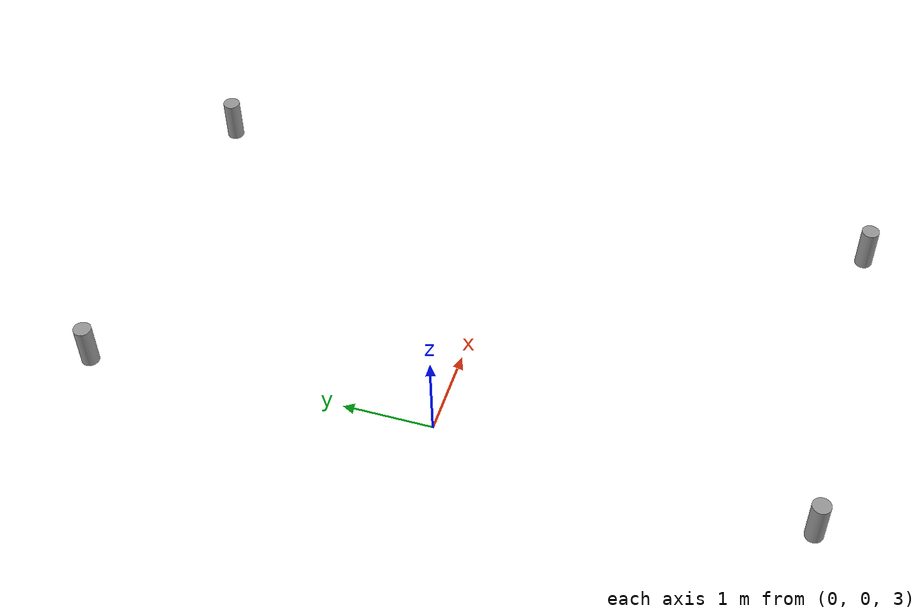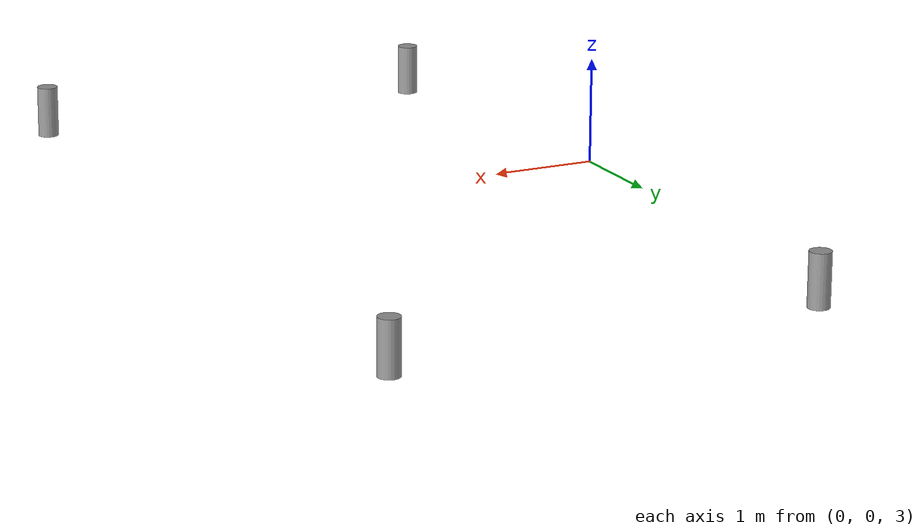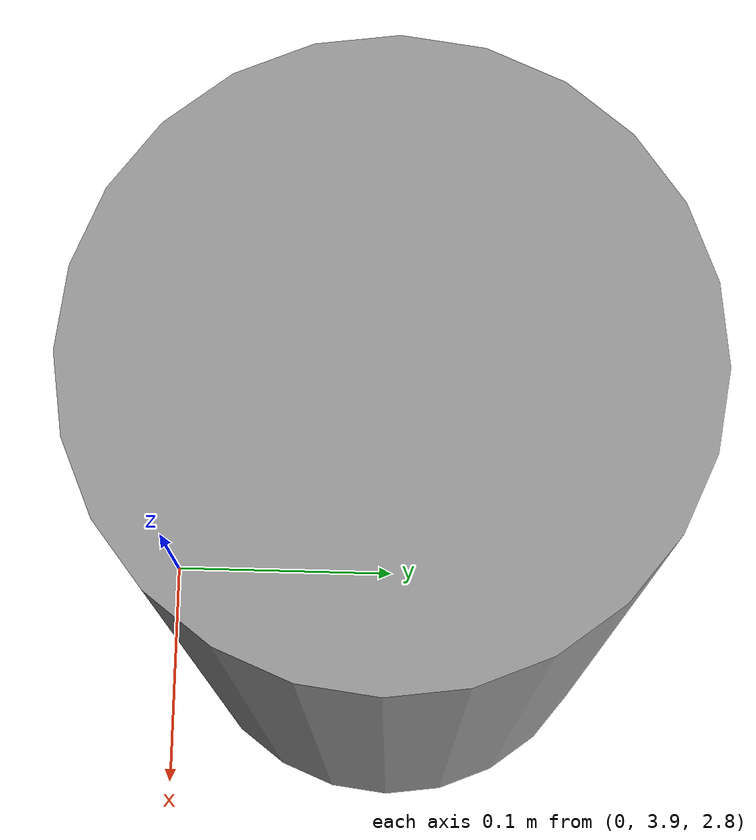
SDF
<sdf version="1.4">
 <world name="default">
  <scene><ambient>0.5 0.5 0.5 1</ambient><background>0.5 0.5 0.5 1</background><shadows>false</shadows></scene>
  <physics type="ode">
   <gravity>0 0 -20</gravity>
   <ode>
    <solver><type>quick</type><iters>10</iters><sor>1.3</sor></solver>
    <constraints>
     <cfm>0.0</cfm>
     <erp>0.2</erp>
     <contact_max_correcting_vel>10</contact_max_correcting_vel>
     <contact_surface_layer>0.001</contact_surface_layer>
    </constraints>
   </ode>
   <max_step_size>0.001</max_step_size>
  </physics>
  <light type="directional" name="directional_light_1">
   <pose>0 20 20 0.1 0.1 0</pose>
   <diffuse>1 1 1 1</diffuse>
   <specular>1 1 1 1</specular>
   <attenuation><range>300</range></attenuation>
   <direction>0.1 0.1 -1</direction>
   <cast_shadows>false</cast_shadows>
  </light>
  <model name="uwb_anchor0">
   <static>1</static>
   <link name="link">
    <pose>0 -4 3.0 0 -0 0</pose>
    <velocity>0 0 0 0 -0 0</velocity>
    <acceleration>0 0 0 0 -0 0</acceleration>
    <wrench>0 0 0 0 -0 0</wrench>
    <inertial>
     <mass>1</mass>
     <inertia><ixx>0.145833</ixx><ixy>0</ixy><ixz>0</ixz><iyy>0.145833</iyy><iyz>0</iyz><izz>0.125</izz></inertia>
    </inertial>
    <visual name="visual">
     <geometry><cylinder><radius>0.1</radius><length>0.5</length></cylinder></geometry>
     <material>
      <script><name>Gazebo/Grey</name><uri>file://media/materials/scripts/gazebo.material</uri></script>
     </material>
    </visual>
   </link>
  </model>
  <model name="uwb_anchor1">
   <static>1</static>
   <link name="link">
    <pose>0 4 3.0 0 -0 0</pose>
    <velocity>0 0 0 0 -0 0</velocity>
    <acceleration>0 0 0 0 -0 0</acceleration>
    <wrench>0 0 0 0 -0 0</wrench>
    <inertial>
     <mass>1</mass>
     <inertia><ixx>0.145833</ixx><ixy>0</ixy><ixz>0</ixz><iyy>0.145833</iyy><iyz>0</iyz><izz>0.125</izz></inertia>
    </inertial>
    <visual name="visual">
     <geometry><cylinder><radius>0.1</radius><length>0.5</length></cylinder></geometry>
     <material>
      <script><name>Gazebo/Grey</name><uri>file://media/materials/scripts/gazebo.material</uri></script>
     </material>
    </visual>
   </link>
  </model>
  <model name="uwb_anchor2">
   <static>1</static>
   <link name="link">
    <pose>4 4 3.0 0 -0 0</pose>
    <velocity>0 0 0 0 -0 0</velocity>
    <acceleration>0 0 0 0 -0 0</acceleration>
    <wrench>0 0 0 0 -0 0</wrench>
    <inertial>
     <mass>1</mass>
     <inertia><ixx>0.145833</ixx><ixy>0</ixy><ixz>0</ixz><iyy>0.145833</iyy><iyz>0</iyz><izz>0.125</izz></inertia>
    </inertial>
    <visual name="visual">
     <geometry><cylinder><radius>0.1</radius><length>0.5</length></cylinder></geometry>
     <material>
      <script><name>Gazebo/Grey</name><uri>file://media/materials/scripts/gazebo.material</uri></script>
     </material>
    </visual>
   </link>
  </model>
  <model name="uwb_anchor3">
   <static>1</static>
   <link name="link">
    <pose>4 -4 3.0 0 -0 0</pose>
    <velocity>0 0 0 0 -0 0</velocity>
    <acceleration>0 0 0 0 -0 0</acceleration>
    <wrench>0 0 0 0 -0 0</wrench>
    <inertial>
     <mass>1</mass>
     <inertia><ixx>0.145833</ixx><ixy>0</ixy><ixz>0</ixz><iyy>0.145833</iyy><iyz>0</iyz><izz>0.125</izz></inertia>
    </inertial>
    <visual name="visual">
     <geometry><cylinder><radius>0.1</radius><length>0.5</length></cylinder></geometry>
     <material>
      <script><name>Gazebo/Grey</name><uri>file://media/materials/scripts/gazebo.material</uri></script>
     </material>
    </visual>
   </link>
  </model>
 </world>
</sdf>
